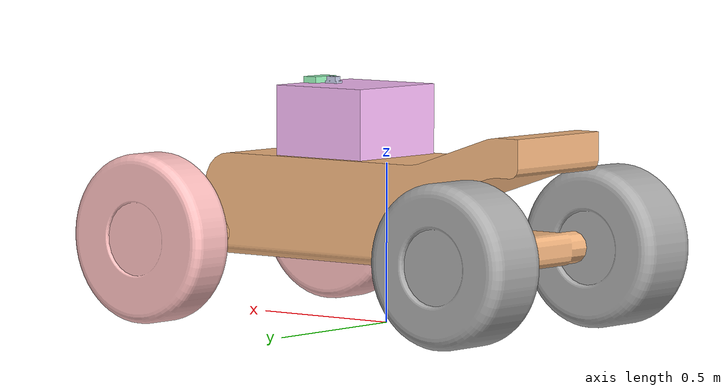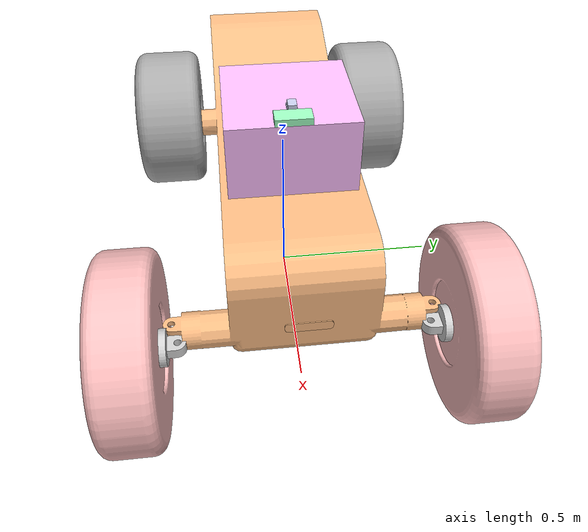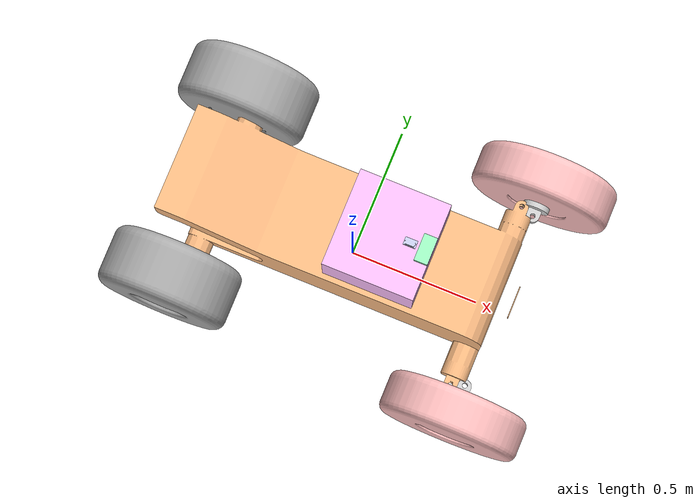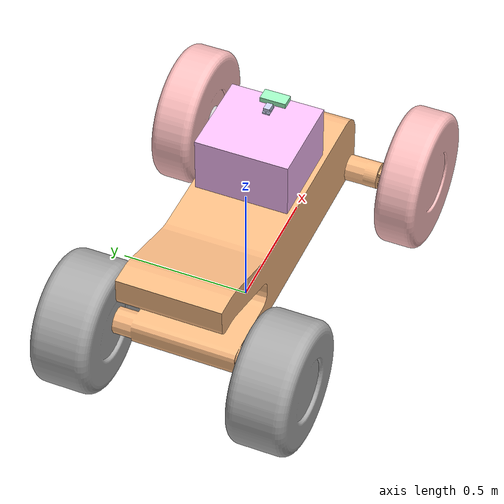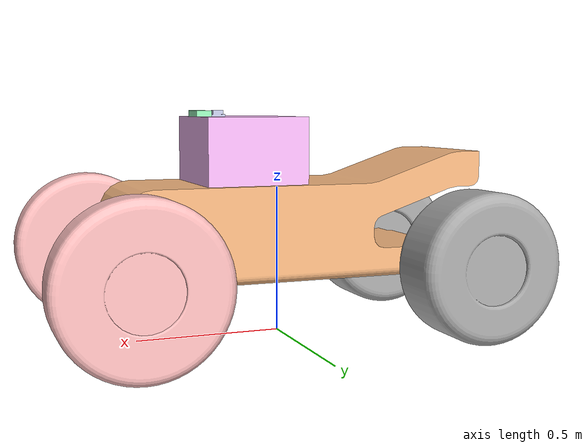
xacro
<?xml version="1.0" encoding="utf-8"?>
<robot name="puma_model" xmlns:xacro="http://ros.org/wiki/xacro">
  <xacro:include filename="$(find puma_model)/urdf/puma_model.gazebo.xacro"/>
  <link
    name="base_link">
    <inertial>
      <origin
        xyz="0.0168277422445081 2.52439420492245E-07 0.369470453921975"
        rpy="0 0 0" />
      <mass
        value="154.381267641272" />
      <inertia
        ixx="3.8643546710344"
        ixy="-9.50231640652348E-07"
        ixz="1.15363830622366"
        iyy="22.232099682778"
        iyz="9.01311880648608E-06"
        izz="22.6507305397505" />
    </inertial>
    <visual>
      <origin
        xyz="0 0 0"
        rpy="0 0 0" />
      <geometry>
        <mesh
          filename="package://puma_model/meshes/base_link.STL" />
      </geometry>
      <material
        name="">
        <color
          rgba="0.988235294117647 0.737254901960784 0.517647058823529 1" />
      </material>
    </visual>
    <collision>
      <origin
        xyz="0 0 0"
        rpy="0 0 0" />
      <geometry>
        <mesh
          filename="package://puma_model/meshes/base_link.STL" />
      </geometry>
    </collision>
  </link>
  <link
    name="dir_right_link">
    <inertial>
      <origin
        xyz="-2.22044604925031E-16 -0.0294777193153578 1.11022302462516E-16"
        rpy="0 0 0" />
      <mass
        value="0.214607285846125" />
      <inertia
        ixx="0.000161787233745492"
        ixy="-1.25101536732731E-20"
        ixz="-1.72135905926183E-21"
        iyy="0.000212842937751498"
        iyz="1.18540784159886E-20"
        izz="0.000169651482672632" />
    </inertial>
    <visual>
      <origin
        xyz="0 0 0"
        rpy="0 0 0" />
      <geometry>
        <mesh
          filename="package://puma_model/meshes/dir_right_link.STL" />
      </geometry>
      <material
        name="">
        <color
          rgba="0.823529411764706 0.823529411764706 0.823529411764706 1" />
      </material>
    </visual>
    <collision>
      <origin
        xyz="0 0 0"
        rpy="0 0 0" />
      <geometry>
        <mesh
          filename="package://puma_model/meshes/dir_right_link.STL" />
      </geometry>
    </collision>
  </link>
  <joint
    name="dir_right_joint"
    type="continuous">
    <origin
      xyz="0.576729916214884 -0.337 0.265"
      rpy="0 0 0" />
    <parent
      link="base_link" />
    <child
      link="dir_right_link" />
    <axis
      xyz="0 0 1" />
  </joint>
  <link
    name="wheel_right_front_link">
    <inertial>
      <origin
        xyz="0 1.11022302462516E-16 0.07"
        rpy="0 0 0" />
      <mass
        value="33.8332405777372" />
      <inertia
        ixx="0.663166940004142"
        ixy="1.74598601904134E-32"
        ixz="4.51486827425246E-17"
        iyy="0.663166940004142"
        iyz="1.07735398960113E-17"
        izz="1.19194782788173" />
    </inertial>
    <visual>
      <origin
        xyz="0 0 0"
        rpy="0 0 0" />
      <geometry>
        <mesh
          filename="package://puma_model/meshes/wheel_right_front_link.STL" />
      </geometry>
      <material
        name="">
        <color
          rgba="1 0.752941176470588 0.752941176470588 1" />
      </material>
    </visual>
    <collision>
      <origin
        xyz="0 0 0"
        rpy="0 0 0" />
      <geometry>
        <mesh
          filename="package://puma_model/meshes/wheel_right_front_link.STL" />
      </geometry>
    </collision>
  </link>
  <joint
    name="wheel_right_front_joint"
    type="continuous">
    <origin
      xyz="0 -0.048 0"
      rpy="1.5708 0 0" />
    <parent
      link="dir_right_link" />
    <child
      link="wheel_right_front_link" />
    <axis
      xyz="0 0 -1" />
    <dynamics
      friction="1" />
  </joint>
  <link
    name="dir_left_link">
    <inertial>
      <origin
        xyz="0 0.0294777193153578 1.11022302462516E-16"
        rpy="0 0 0" />
      <mass
        value="0.214607285846125" />
      <inertia
        ixx="0.000161787233745492"
        ixy="1.85933047820183E-21"
        ixz="-2.5363205724219E-21"
        iyy="0.000212842937751498"
        iyz="3.87303577600058E-20"
        izz="0.000169651482672632" />
    </inertial>
    <visual>
      <origin
        xyz="0 0 0"
        rpy="0 0 0" />
      <geometry>
        <mesh
          filename="package://puma_model/meshes/dir_left_link.STL" />
      </geometry>
      <material
        name="">
        <color
          rgba="0.823529411764706 0.823529411764706 0.823529411764706 1" />
      </material>
    </visual>
    <collision>
      <origin
        xyz="0 0 0"
        rpy="0 0 0" />
      <geometry>
        <mesh
          filename="package://puma_model/meshes/dir_left_link.STL" />
      </geometry>
    </collision>
  </link>
  <joint
    name="dir_left_joint"
    type="continuous">
    <origin
      xyz="0.57673 0.337 0.265"
      rpy="0 0 0" />
    <parent
      link="base_link" />
    <child
      link="dir_left_link" />
    <axis
      xyz="0 0 1" />
  </joint>
  <link
    name="wheel_left_front_link">
    <inertial>
      <origin
        xyz="0 1.11022302462516E-16 0.0699999999999999"
        rpy="0 0 0" />
      <mass
        value="33.8332405777372" />
      <inertia
        ixx="0.663166940004142"
        ixy="3.62902943280336E-32"
        ixz="-3.47625364951278E-17"
        iyy="0.663166940004142"
        iyz="1.01566182105982E-18"
        izz="1.19194782788173" />
    </inertial>
    <visual>
      <origin
        xyz="0 0 0"
        rpy="0 0 0" />
      <geometry>
        <mesh
          filename="package://puma_model/meshes/wheel_left_front_link.STL" />
      </geometry>
      <material
        name="">
        <color
          rgba="1 0.752941176470588 0.752941176470588 1" />
      </material>
    </visual>
    <collision>
      <origin
        xyz="0 0 0"
        rpy="0 0 0" />
      <geometry>
        <mesh
          filename="package://puma_model/meshes/wheel_left_front_link.STL" />
      </geometry>
    </collision>
  </link>
  <joint
    name="wheel_left_front_joint"
    type="continuous">
    <origin
      xyz="0 0.048 0"
      rpy="1.5708 0 -3.1416" />
    <parent
      link="dir_left_link" />
    <child
      link="wheel_left_front_link" />
    <axis
      xyz="0 0 -1" />
    <dynamics
      friction="1" />
  </joint>
  <link
    name="wheel_right_back_link">
    <inertial>
      <origin
        xyz="0 -1.11022302462516E-16 0.1"
        rpy="0 0 0" />
      <mass
        value="42.8421975932662" />
      <inertia
        ixx="0.843504879614984"
        ixy="-2.17897005442215E-32"
        ixz="6.01287397790472E-17"
        iyy="0.843504879614984"
        iyz="-2.51058847467066E-16"
        izz="1.34196583325215" />
    </inertial>
    <visual>
      <origin
        xyz="0 0 0"
        rpy="0 0 0" />
      <geometry>
        <mesh
          filename="package://puma_model/meshes/wheel_right_back_link.STL" />
      </geometry>
      <material
        name="">
        <color
          rgba="0.666666666666667 0.666666666666667 0.666666666666667 1" />
      </material>
    </visual>
    <collision>
      <origin
        xyz="0 0 0"
        rpy="0 0 0" />
      <geometry>
        <mesh
          filename="package://puma_model/meshes/wheel_right_back_link.STL" />
      </geometry>
    </collision>
  </link>
  <joint
    name="wheel_right_back_joint"
    type="continuous">
    <origin
      xyz="-0.57327 -0.275 0.25"
      rpy="1.5708 0 0" />
    <parent
      link="base_link" />
    <child
      link="wheel_right_back_link" />
    <axis
      xyz="0 0 -1" />
    <dynamics
      friction="1" />
  </joint>
  <link
    name="wheel_left_back_link">
    <inertial>
      <origin
        xyz="1.11022302462516E-16 1.11022302462516E-16 0.1"
        rpy="0 0 0" />
      <mass
        value="42.8421975932662" />
      <inertia
        ixx="0.843504879614984"
        ixy="-4.06685460585996E-33"
        ixz="-3.69567293190446E-18"
        iyy="0.843504879614984"
        iyz="1.64612942139347E-17"
        izz="1.34196583325215" />
    </inertial>
    <visual>
      <origin
        xyz="0 0 0"
        rpy="0 0 0" />
      <geometry>
        <mesh
          filename="package://puma_model/meshes/wheel_left_back_link.STL" />
      </geometry>
      <material
        name="">
        <color
          rgba="0.666666666666667 0.666666666666667 0.666666666666667 1" />
      </material>
    </visual>
    <collision>
      <origin
        xyz="0 0 0"
        rpy="0 0 0" />
      <geometry>
        <mesh
          filename="package://puma_model/meshes/wheel_left_back_link.STL" />
      </geometry>
    </collision>
  </link>
  <joint
    name="wheel_left_back_joint"
    type="continuous">
    <origin
      xyz="-0.57327 0.275 0.25"
      rpy="-1.5708 0 0" />
    <parent
      link="base_link" />
    <child
      link="wheel_left_back_link" />
    <axis
      xyz="0 0 -1" />
    <dynamics
      friction="1" />
  </joint>
  <link
    name="base_component_link">
    <inertial>
      <origin
        xyz="-1.3878E-17 -1.3878E-17 0"
        rpy="0 0 0" />
      <mass
        value="26.928" />
      <inertia
        ixx="0.39943"
        ixy="1.537E-18"
        ixz="-1.0408E-17"
        iyy="0.36802"
        iyz="1.0408E-17"
        izz="0.55023" />
    </inertial>
    <visual>
      <origin
        xyz="0 0 0"
        rpy="0 0 0" />
      <geometry>
        <mesh
          filename="package://puma_model/meshes/base_component_link.STL" />
      </geometry>
      <material
        name="">
        <color
          rgba="1 0.75294 1 1" />
      </material>
    </visual>
    <collision>
      <origin
        xyz="0 0 0"
        rpy="0 0 0" />
      <geometry>
        <mesh
          filename="package://puma_model/meshes/base_component_link.STL" />
      </geometry>
    </collision>
  </link>
  <joint
    name="base_component_joint"
    type="fixed">
    <origin
      xyz="0.12673 0 0.63"
      rpy="0 0 0" />
    <parent
      link="base_link" />
    <child
      link="base_component_link" />
    <axis
      xyz="0 0 0" />
  </joint>
  <link
    name="gps_link">
    <inertial>
      <origin
        xyz="0 -1.3878E-17 -0.01"
        rpy="0 0 0" />
      <mass
        value="0.1" />
      <inertia
        ixx="8.6667E-05"
        ixy="7.1603E-22"
        ixz="1.084E-37"
        iyy="2.4167E-05"
        iyz="-4.3549E-22"
        izz="0.00010417" />
    </inertial>
    <visual>
      <origin
        xyz="0 0 0"
        rpy="0 0 0" />
      <geometry>
        <mesh
          filename="package://puma_model/meshes/gps_link.STL" />
      </geometry>
      <material
        name="">
        <color
          rgba="0.62353 1 0.76078 1" />
      </material>
    </visual>
    <collision>
      <origin
        xyz="0 0 0"
        rpy="0 0 0" />
      <geometry>
        <mesh
          filename="package://puma_model/meshes/gps_link.STL" />
      </geometry>
    </collision>
  </link>
  <joint
    name="gps_joint"
    type="fixed">
    <origin
      xyz="0.27173 0 0.76"
      rpy="0 0 0" />
    <parent
      link="base_link" />
    <child
      link="gps_link" />
    <axis
      xyz="0 0 0" />
  </joint>
  <link
    name="imu_link">
    <inertial>
      <origin
        xyz="5.0806E-07 -0.00019557 -0.012163"
        rpy="0 0 0" />
      <mass
        value="0.010655" />
      <inertia
        ixx="1.1671E-06"
        ixy="2.0326E-11"
        ixz="2.1164E-12"
        iyy="2.2054E-06"
        iyz="-8.1469E-10"
        izz="2.7832E-06" />
    </inertial>
    <visual>
      <origin
        xyz="0 0 0"
        rpy="0 0 0" />
      <geometry>
        <mesh
          filename="package://puma_model/meshes/imu_link.STL" />
      </geometry>
      <material
        name="">
        <color
          rgba="0.79216 0.81961 0.93333 1" />
      </material>
    </visual>
    <collision>
      <origin
        xyz="0 0 0"
        rpy="0 0 0" />
      <geometry>
        <mesh
          filename="package://puma_model/meshes/imu_link.STL" />
      </geometry>
    </collision>
  </link>
  <joint
    name="imu_joint"
    type="fixed">
    <origin
      xyz="0.21373 0.003 0.761"
      rpy="0 0 0" />
    <parent
      link="base_link" />
    <child
      link="imu_link" />
    <axis
      xyz="0 0 0" />
  </joint>
  <link
    name="camara_link">
    <inertial>
      <origin
        xyz="0.016828 2.5244E-07 0.36947"
        rpy="0 0 0" />
      <mass
        value="154.38" />
      <inertia
        ixx="3.8644"
        ixy="-9.5023E-07"
        ixz="1.1536"
        iyy="22.232"
        iyz="9.0131E-06"
        izz="22.651" />
    </inertial>
    <visual>
      <origin
        xyz="0 0 0"
        rpy="0 0 0" />
      <geometry>
        <mesh
          filename="package://puma_model/meshes/camara_link.STL" />
      </geometry>
      <material
        name="">
        <color
          rgba="0.98824 0.73725 0.51765 1" />
      </material>
    </visual>
    <collision>
      <origin
        xyz="0 0 0"
        rpy="0 0 0" />
      <geometry>
        <mesh
          filename="package://puma_model/meshes/camara_link.STL" />
      </geometry>
    </collision>
  </link>
  <joint
    name="camara_joint"
    type="fixed">
    <origin
      xyz="0.62973 0 0.36"
      rpy="0 0 0" />
    <parent
      link="base_link" />
    <child
      link="camara_link" />
    <axis
      xyz="0 0 0" />
  </joint>

</robot>
